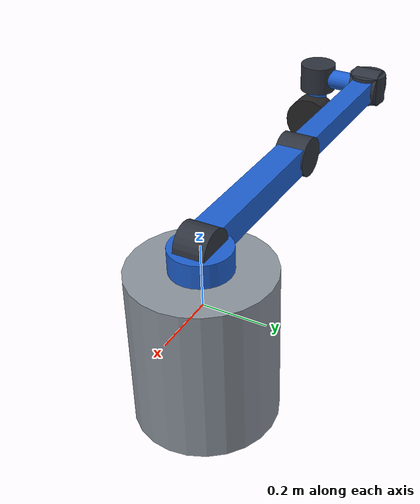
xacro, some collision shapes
<?xml version="1.0"?>
<robot name="mdh_robot" xmlns:xacro="http://ros.org/wiki/xacro">

  <!-- INCLUDES                                           -->

  <xacro:include filename="$(find conveyor_project)/urdf/mdh_robot_control.gazebo.xacro"/>
  <xacro:include filename="$(find conveyor_project)/urdf/epick.urdf.xacro"/>

  <!-- MATERIALS                                          -->

  <material name="blue">
    <color rgba="0.12 0.38 0.82 1.0"/>
  </material>

  <material name="dark">
    <color rgba="0.18 0.20 0.24 1.0"/>
  </material>

  <material name="grey">
    <color rgba="0.55 0.58 0.62 1.0"/>
  </material>

  <!-- HELPER MACROS                                      -->

  <xacro:macro name="body" params="name mass">
    <link name="${name}">
      <inertial>
        <mass value="${mass}"/>
        <inertia
          ixx="0.01" ixy="0" ixz="0"
          iyy="0.01" iyz="0" izz="0.01"/>
      </inertial>
    </link>
  </xacro:macro>

  <xacro:macro name="motor" params="name radius">
    <link name="${name}">

      <visual>
        <geometry>
          <cylinder radius="${radius}" length="0.10"/>
        </geometry>
        <material name="dark"/>
      </visual>

      <collision>
        <geometry>
          <cylinder radius="${radius}" length="0.10"/>
        </geometry>
      </collision>

      <inertial>
        <mass value="0.8"/>
        <inertia
          ixx="0.004" ixy="0" ixz="0"
          iyy="0.004" iyz="0" izz="0.004"/>
      </inertial>

    </link>
  </xacro:macro>

  <xacro:macro name="z_connector" params="name parent length radius">

    <xacro:if value="${length > 0.001}">

      <link name="${name}">

        <visual>
          <origin xyz="0 0 ${length/2}" rpy="0 0 0"/>
          <geometry>
            <cylinder radius="${radius}" length="${length}"/>
          </geometry>
          <material name="blue"/>
        </visual>

        <inertial>
          <origin xyz="0 0 ${length/2}"/>
          <mass value="0.2"/>
          <inertia
            ixx="0.001" ixy="0" ixz="0"
            iyy="0.001" iyz="0" izz="0.001"/>
        </inertial>

      </link>

      <joint name="${name}_fixed" type="fixed">
        <parent link="${parent}"/>
        <child link="${name}"/>
        <origin xyz="0 0 0" rpy="0 0 0"/>
      </joint>

    </xacro:if>

  </xacro:macro>

  <!-- MODIFIED DH JOINT                                  -->

  <xacro:macro name="mdh_joint" params="i parent a d alpha">

    <xacro:body name="pre_${i}" mass="0.01"/>

    <joint name="pre_joint_${i}" type="fixed">
      <parent link="${parent}"/>
      <child link="pre_${i}"/>
      <origin xyz="${a} 0 0" rpy="${alpha} 0 0"/>
    </joint>

    <xacro:motor name="axis_${i}" radius="0.065"/>

    <joint name="joint_${i}" type="revolute">
      <parent link="pre_${i}"/>
      <child link="axis_${i}"/>

      <origin xyz="0 0 0" rpy="0 0 0"/>
      <axis xyz="0 0 1"/>

      <limit
        lower="${-2*pi}"
        upper="${2*pi}"
        effort="150"
        velocity="2.0"/>

      <dynamics damping="1.0" friction="0.1"/>
    </joint>

    <xacro:z_connector
      name="connector_${i}"
      parent="axis_${i}"
      length="${d}"
      radius="0.035"/>

    <xacro:body name="link_${i}" mass="0.5"/>

    <joint name="post_joint_${i}" type="fixed">
      <parent link="axis_${i}"/>
      <child link="link_${i}"/>
      <origin xyz="0 0 ${d}" rpy="0 0 0"/>
    </joint>

  </xacro:macro>

  <!-- WORLD AND BASE                                     -->

  <link name="world"/>

  <joint name="world_to_base" type="fixed">
    <parent link="world"/>
    <child link="base_link"/>
    <origin xyz="0 0 0" rpy="0 0 0"/>
  </joint>

  <!--
    Base diameter: 440 mm
    Base height:   500 mm

    With spawn-z = 0.375 m,
    bottom of base is at ground level.
  -->

  <link name="base_link">

    <visual>
      <origin xyz="0 0 -0.125" rpy="0 0 0"/>
      <geometry>
        <cylinder radius="0.22" length="0.50"/>
      </geometry>
      <material name="grey"/>
    </visual>

    <collision>
      <origin xyz="0 0 -0.125" rpy="0 0 0"/>
      <geometry>
        <cylinder radius="0.22" length="0.50"/>
      </geometry>
    </collision>

    <inertial>
      <origin xyz="0 0 -0.125"/>
      <mass value="35.0"/>
      <inertia
        ixx="0.94" ixy="0" ixz="0"
        iyy="0.94" iyz="0"
        izz="0.42"/>
    </inertial>

  </link>

  <!-- JOINT 1 - BASE ROTATION                             -->

  <xacro:mdh_joint
    i="1"
    parent="base_link"
    a="0"
    d="0.20"
    alpha="0"/>

  <!-- Rotating base column -->

  <link name="base_motor_mount">

    <visual>
      <origin xyz="0 0 -0.09" rpy="0 0 0"/>
      <geometry>
        <cylinder radius="0.095" length="0.18"/>
      </geometry>
      <material name="blue"/>
    </visual>

    <inertial>
      <origin xyz="0 0 -0.09"/>
      <mass value="0.5"/>
      <inertia
        ixx="0.002" ixy="0" ixz="0"
        iyy="0.002" iyz="0"
        izz="0.002"/>
    </inertial>

  </link>

  <joint name="base_motor_mount_fixed" type="fixed">
    <parent link="link_1"/>
    <child link="base_motor_mount"/>
    <origin xyz="0 0 0" rpy="0 0 0"/>
  </joint>

  <!-- JOINT 2 - SHOULDER                                  -->

  <xacro:mdh_joint
    i="2"
    parent="link_1"
    a="0"
    d="0"
    alpha="${pi/2}"/>

  <!-- First arm: 600 mm -->

  <link name="upper_arm">

    <visual>
      <origin xyz="-0.30 0 0" rpy="0 0 0"/>
      <geometry>
        <box size="0.60 0.09 0.09"/>
      </geometry>
      <material name="blue"/>
    </visual>

    <collision>
      <origin xyz="-0.30 0 0" rpy="0 0 0"/>
      <geometry>
        <box size="0.60 0.09 0.09"/>
      </geometry>
    </collision>

    <inertial>
      <origin xyz="-0.30 0 0"/>
      <mass value="3.0"/>
      <inertia
        ixx="0.004" ixy="0" ixz="0"
        iyy="0.09" iyz="0"
        izz="0.09"/>
    </inertial>

  </link>

  <joint name="upper_arm_fixed" type="fixed">
    <parent link="link_2"/>
    <child link="upper_arm"/>
    <origin xyz="0 0 0" rpy="0 0 0"/>
  </joint>

  <!-- JOINT 3 - ELBOW                                     -->

  <xacro:mdh_joint
    i="3"
    parent="link_2"
    a="-0.60"
    d="0"
    alpha="0"/>

  <!-- Second arm: 600 mm -->

  <link name="forearm">

    <visual>
      <origin xyz="-0.30 0 0" rpy="0 0 0"/>
      <geometry>
        <box size="0.60 0.075 0.075"/>
      </geometry>
      <material name="blue"/>
    </visual>

    <collision>
      <origin xyz="-0.30 0 0"/>
      <geometry>
        <box size="0.60 0.075 0.075"/>
      </geometry>
    </collision>

    <inertial>
      <origin xyz="-0.30 0 0"/>
      <mass value="2.0"/>
      <inertia
        ixx="0.003" ixy="0" ixz="0"
        iyy="0.06" iyz="0"
        izz="0.06"/>
    </inertial>

  </link>

  <joint name="forearm_fixed" type="fixed">
    <parent link="link_3"/>
    <child link="forearm"/>
    <origin xyz="0 0 0" rpy="0 0 0"/>
  </joint>

  <!-- JOINTS 4, 5, 6 - WRIST                              -->

  <xacro:mdh_joint
    i="4"
    parent="link_3"
    a="-0.60"
    d="0"
    alpha="${pi/2}"/>

  <xacro:mdh_joint
    i="5"
    parent="link_4"
    a="0"
    d="0.20"
    alpha="${-pi/2}"/>

  <xacro:mdh_joint
    i="6"
    parent="link_5"
    a="0"
    d="0.10"
    alpha="${pi/2}"/>

  <!-- ROBOTIQ EPICK FOUR-CUP VACUUM GRIPPER              -->

  <!--
    The epick macro creates:
      epick_link
      epick_joint
      tcp_link
      tcp_joint
  -->

  <xacro:epick parent="link_6"/>

  <!-- Keep tool0 as an alias of the gripper TCP -->

  <link name="tool0"/>

  <joint name="tool0_joint" type="fixed">
    <parent link="tcp_link"/>
    <child link="tool0"/>
    <origin xyz="0 0 0" rpy="0 0 0"/>
  </joint>

  <!-- GAZEBO VACUUM ATTACH / DETACH                       -->

  <gazebo>

    <plugin
      filename="gz-sim-detachable-joint-system"
      name="gz::sim::systems::DetachableJoint">

      <parent_link>epick_link</parent_link>

      <!-- These names must match the Gazebo package model -->
      <child_model>package</child_model>
      <child_link>package_link</child_link>

      <detach_topic>/vacuum/detach</detach_topic>
      <attach_topic>/vacuum/attach</attach_topic>
      <output_topic>/vacuum/state</output_topic>

    </plugin>

  </gazebo>

</robot>

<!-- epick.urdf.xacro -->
<robot xmlns:xacro="http://www.ros.org/wiki/xacro">

  <!-- ROBOTIQ EPICK FOUR-CUP GRIPPER                      -->

  <xacro:macro name="epick" params="parent">

    <!--
      Robotiq EPick vacuum gripper

      Mass: 2.0 kg

      Mesh:
      meshes/epick_four_cup.stl

      Mounting offset: 60 mm
      TCP offset from parent: 143.025 mm
    -->

    <!-- GRIPPER LINK                                       -->

    <link name="epick_link">

      <inertial>
        <origin xyz="0 0 0" rpy="0 0 0"/>
        <mass value="2.0"/>
        <inertia
          ixx="0.01"
          ixy="0.0"
          ixz="0.0"
          iyy="0.01"
          iyz="0.0"
          izz="0.01"/>
      </inertial>

      <!-- Actual EPick STL model -->

      <visual>

        <origin
          xyz="0 0 0"
          rpy="0 0 3.14159"/>

        <geometry>
          <mesh
            filename="package://conveyor_project/meshes/epick_four_cup.stl"
            scale="0.001 0.001 0.001"/>
        </geometry>

        <material name="epick_dark">
          <color rgba="0.15 0.15 0.15 1.0"/>
        </material>

      </visual>

      <!-- Approximate collision geometry -->

      <collision>

        <origin
          xyz="0 0 0.04"
          rpy="0 0 0"/>

        <geometry>
          <cylinder
            radius="0.09"
            length="0.08"/>
        </geometry>

      </collision>

    </link>

    <!-- ATTACH EPICK TO ROBOT LINK 6                       -->

    <joint name="epick_joint" type="fixed">

      <parent link="${parent}"/>
      <child link="epick_link"/>

      <!-- Original mounting orientation -->
      <origin
        xyz="0 0 0.06"
        rpy="1.5708 0 1.5708"/>

    </joint>

    <!-- Preserve gripper link in Gazebo -->

    <gazebo reference="epick_joint">
      <preserveFixedJoint>true</preserveFixedJoint>
    </gazebo>

    <!-- TCP                                               -->

    <link name="tcp_link"/>

    <joint name="tcp_joint" type="fixed">

      <parent link="${parent}"/>
      <child link="tcp_link"/>

      <origin
        xyz="0 0 0.143025"
        rpy="0 0 0"/>

    </joint>

  </xacro:macro>

</robot>
